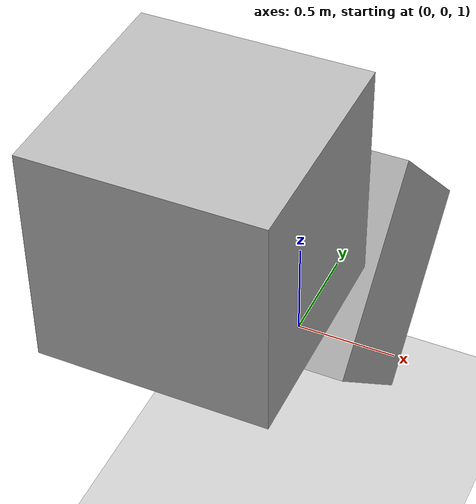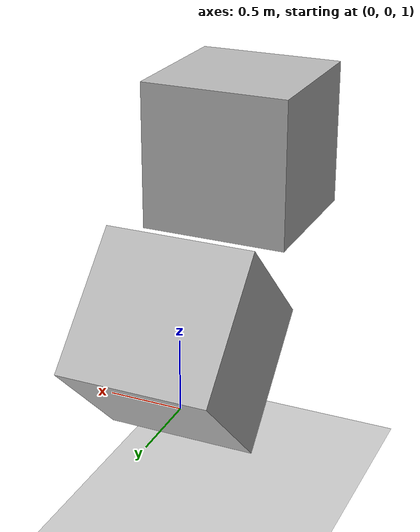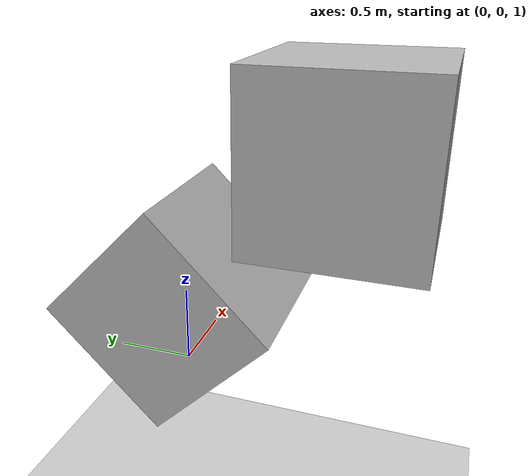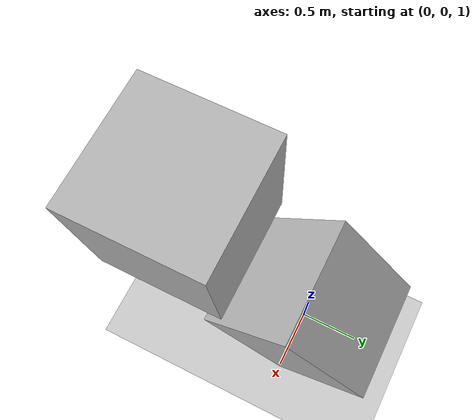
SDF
<?xml version="1.0" ?>
<sdf version="1.6">
  <world name="default">
    <include>
      <uri>model://ground_plane</uri>
    </include>
    <include>
      <uri>model://sun</uri>
    </include>

    <model name="box">
      <allow_auto_disable>0</allow_auto_disable>
      <pose>0 0 1.5 0.7854 0 0</pose>
      <link name="link1">
        <inertial>
          <mass>0.2</mass>
          <inertia>
            <ixx>0.0333333</ixx>
            <ixy>0</ixy>
            <ixz>0</ixz>
            <iyy>0.0333333</iyy>
            <iyz>0</iyz>
            <izz>0.0333333</izz>
          </inertia>
        </inertial>
        <collision name="collision">
          <geometry>
            <box>
              <size>1 1 1</size>
            </box>
          </geometry>
        </collision>
        <visual name="visual">
          <geometry>
            <box>
              <size>1 1 1</size>
            </box>
          </geometry>
        </visual>
      </link>

      <link name="link2">
        <pose>0 0 1.415 0.7854 0 0</pose>
        <inertial>
          <mass>0.2</mass>
          <inertia>
            <ixx>0.0333333</ixx>
            <ixy>0</ixy>
            <ixz>0</ixz>
            <iyy>0.0333333</iyy>
            <iyz>0</iyz>
            <izz>0.0333333</izz>
          </inertia>
        </inertial>
        <collision name="collision">
          <geometry>
            <box>
              <size>1 1 1</size>
            </box>
          </geometry>
        </collision>
        <visual name="visual">
          <geometry>
            <box>
              <size>1 1 1</size>
            </box>
          </geometry>
        </visual>
      </link>

      <joint name="joint2" type="fixed">
        <parent>link1</parent>
        <child>link2</child>
      </joint>

      <plugin filename="libHarnessPlugin.so" name="harness">

        <joint name="joint1" type="revolute">
          <pose>0 0 2 0 0 0</pose>
          <!-- It is important to connect this joint to the world -->
          <parent>world</parent>
          <child>link2</child>
          <axis>
            <xyz>0 1 1</xyz>
            <dynamics>
              <damping>10</damping>
            </dynamics>
            <limit>
              <lower>-2.5</lower>
              <upper>0</upper>
              <effort>10000</effort>
              <velocity>-1</velocity>
              <stiffness>0</stiffness>
              <dissipation>0</dissipation>
            </limit>
          </axis>
          <physics>
            <ode>
              <implicit_spring_damper>1</implicit_spring_damper>
              <limit>
                <cfm>0.0</cfm>
                <erp>0.0</erp>
              </limit>
            </ode>
          </physics>
        </joint>

        <!-- The joint that raises or lowers the harness -->
        <winch>
          <!-- This must be a joint specified within
               the body of this plugin. -->
          <joint>joint1</joint>

          <!-- PID value for velocity control of the winch. These values
               are tuned to work with this box model. -->
          <pos_pid>
            <p>400</p>
            <i>0</i>
            <d>0</d>
            <i_max>0</i_max>
            <i_min>0</i_min>
            <cmd_max>10000</cmd_max>
            <cmd_min>-10000</cmd_min>
          </pos_pid>
          <vel_pid>
            <p>400</p>
            <i>0</i>
            <d>0</d>
            <i_max>0</i_max>
            <i_min>0</i_min>
            <cmd_max>10000</cmd_max>
            <cmd_min>0</cmd_min>
          </vel_pid>
        </winch>

        <!-- Joint to detach. Once the joint is detached, it cannot be
             reattached. This must be a joint specified within the
             body of this plugin. -->
        <detach>joint1</detach>
      </plugin>
    </model>

  </world>
</sdf>
